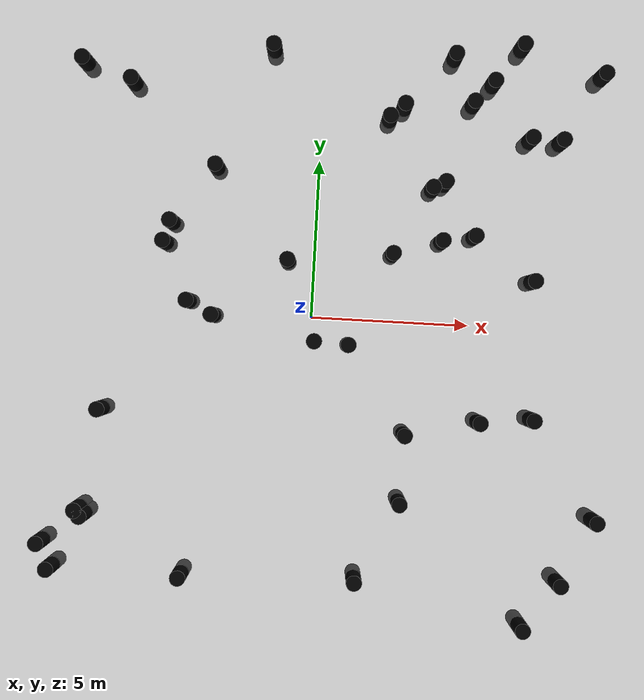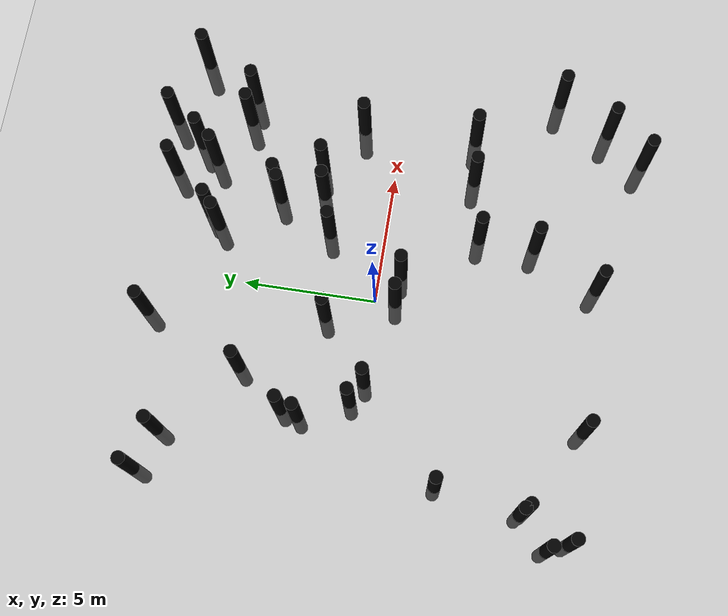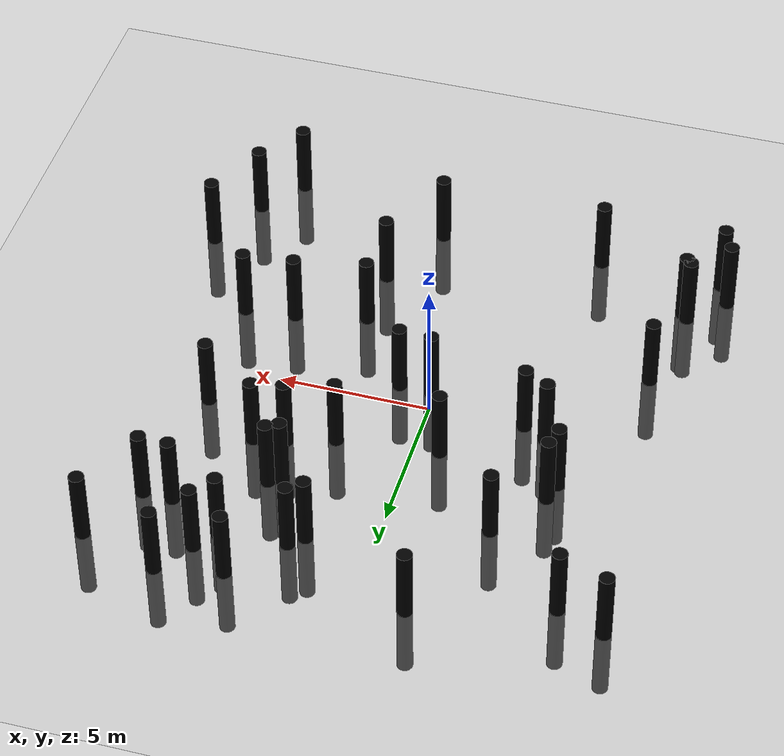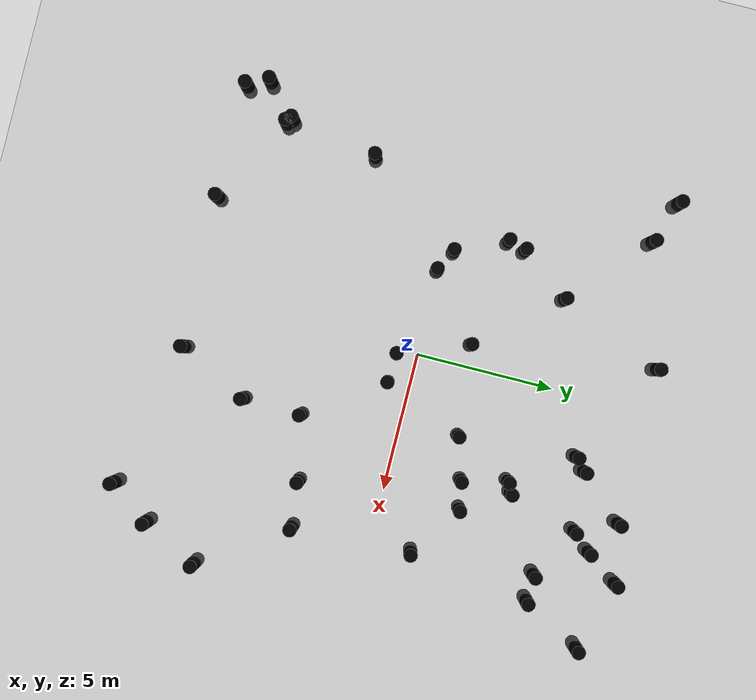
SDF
<?xml version="1.0"?>

<sdf version="1.6">
    <world name="world_medium_density">
        <physics name="4ms" type="ignored">
            <max_step_size>0.004</max_step_size>
            <real_time_factor>1.0</real_time_factor>
        </physics>
        <plugin
            filename="ignition-gazebo-physics-system"
            name="ignition::gazebo::systems::Physics">
        </plugin>
        <plugin
            filename="ignition-gazebo-scene-broadcaster-system"
            name="ignition::gazebo::systems::SceneBroadcaster">
        </plugin>
        <plugin
            filename="ignition-gazebo-user-commands-system"
            name="ignition::gazebo::systems::UserCommands">
        </plugin>
        <plugin
            filename="ignition-gazebo-sensors-system"
            name="ignition::gazebo::systems::Sensors">
            <render_engine>ogre2</render_engine>
        </plugin>

        <include>
            <uri>model://ground_plane</uri>
        </include>
        <include>
            <uri>model://pole</uri>
            <name>pole1</name>
            <pose>-0.84 1.77 0 0 0 0</pose>
        </include>
        <include>
            <uri>model://pole</uri>
            <name>pole2</name>
            <pose>0.13 -0.75 0 0 0 0</pose>
        </include>
        <include>
            <uri>model://pole</uri>
            <name>pole3</name>
            <pose>2.6 6.84 0 0 0 0</pose>
        </include>
        <include>
            <uri>model://pole</uri>
            <name>pole4</name>
            <pose>5.02 2.82 0 0 0 0</pose>
        </include>
        <include>
            <uri>model://pole</uri>
            <name>pole5</name>
            <pose>-4.77 2.16 0 0 0 0</pose>
        </include>
        <include>
            <uri>model://pole</uri>
            <name>pole6</name>
            <pose>2.47 2.14 0 0 0 0</pose>
        </include>
        <include>
            <uri>model://pole</uri>
            <name>pole7</name>
            <pose>6.64 5.99 0 0 0 0</pose>
        </include>
        <include>
            <uri>model://pole</uri>
            <name>pole8</name>
            <pose>6.95 1.5 0 0 0 0</pose>
        </include>
        <include>
            <uri>model://pole</uri>
            <name>pole9</name>
            <pose>-7.87 -8.33 0 0 0 0</pose>
        </include>
        <include>
            <uri>model://pole</uri>
            <name>pole10</name>
            <pose>-6.54 -3.24 0 0 0 0</pose>
        </include>
        <include>
            <uri>model://pole</uri>
            <name>pole11</name>
            <pose>1.21 -0.81 0 0 0 0</pose>
        </include>
        <include>
            <uri>model://pole</uri>
            <name>pole12</name>
            <pose>8.82 8.12 0 0 0 0</pose>
        </include>
        <include>
            <uri>model://pole</uri>
            <name>pole13</name>
            <pose>-3.94 0.33 0 0 0 0</pose>
        </include>
        <include>
            <uri>model://pole</uri>
            <name>pole14</name>
            <pose>7.14 -2.88 0 0 0 0</pose>
        </include>
        <include>
            <uri>model://pole</uri>
            <name>pole15</name>
            <pose>3.61 4.27 0 0 0 0</pose>
        </include>
        <include>
            <uri>model://pole</uri>
            <name>pole16</name>
            <pose>2.15 6.44 0 0 0 0</pose>
        </include>
        <include>
            <uri>model://pole</uri>
            <name>pole17</name>
            <pose>5.46 -3.05 0 0 0 0</pose>
        </include>
        <include>
            <uri>model://pole</uri>
            <name>pole18</name>
            <pose>4.11 8.49 0 0 0 0</pose>
        </include>
        <include>
            <uri>model://pole</uri>
            <name>pole19</name>
            <pose>-1.62 8.48 0 0 0 0</pose>
        </include>
        <include>
            <uri>model://pole</uri>
            <name>pole20</name>
            <pose>-3.25 4.63 0 0 0 0</pose>
        </include>
        <include>
            <uri>model://pole</uri>
            <name>pole21</name>
            <pose>7.13 -9.46 0 0 0 0</pose>
        </include>
        <include>
            <uri>model://pole</uri>
            <name>pole22</name>
            <pose>5.37 7.71 0 0 0 0</pose>
        </include>
        <include>
            <uri>model://pole</uri>
            <name>pole23</name>
            <pose>4.0 2.62 0 0 0 0</pose>
        </include>
        <include>
            <uri>model://pole</uri>
            <name>pole24</name>
            <pose>7.61 5.97 0 0 0 0</pose>
        </include>
        <include>
            <uri>model://pole</uri>
            <name>pole25</name>
            <pose>3.12 -3.56 0 0 0 0</pose>
        </include>
        <include>
            <uri>model://pole</uri>
            <name>pole26</name>
            <pose>3.07 -5.72 0 0 0 0</pose>
        </include>
        <include>
            <uri>model://pole</uri>
            <name>pole27</name>
            <pose>-7.58 7.75 0 0 0 0</pose>
        </include>
        <include>
            <uri>model://pole</uri>
            <name>pole28</name>
            <pose>9.27 -5.98 0 0 0 0</pose>
        </include>
        <include>
            <uri>model://pole</uri>
            <name>pole29</name>
            <pose>-8.22 -7.54 0 0 0 0</pose>
        </include>
        <include>
            <uri>model://pole</uri>
            <name>pole30</name>
            <pose>4.0 4.47 0 0 0 0</pose>
        </include>
        <include>
            <uri>model://pole</uri>
            <name>pole31</name>
            <pose>-3.74 -8.38 0 0 0 0</pose>
        </include>
        <include>
            <uri>model://pole</uri>
            <name>pole32</name>
            <pose>-7.09 -6.44 0 0 0 0</pose>
        </include>
        <include>
            <uri>model://pole</uri>
            <name>pole33</name>
            <pose>-6.02 7.19 0 0 0 0</pose>
        </include>
        <include>
            <uri>model://pole</uri>
            <name>pole34</name>
            <pose>1.78 -8.24 0 0 0 0</pose>
        </include>
        <include>
            <uri>model://pole</uri>
            <name>pole35</name>
            <pose>8.24 -8.0 0 0 0 0</pose>
        </include>
        <include>
            <uri>model://pole</uri>
            <name>pole36</name>
            <pose>-3.14 -0.08 0 0 0 0</pose>
        </include>
        <include>
            <uri>model://pole</uri>
            <name>pole37</name>
            <pose>-6.92 -6.62 0 0 0 0</pose>
        </include>
        <include>
            <uri>model://pole</uri>
            <name>pole38</name>
            <pose>-4.59 2.81 0 0 0 0</pose>
        </include>
        <include>
            <uri>model://pole</uri>
            <name>pole39</name>
            <pose>4.77 7.03 0 0 0 0</pose>
        </include>
        <include>
            <uri>model://pole</uri>
            <name>pole40</name>
            <pose>6.23 8.9 0 0 0 0</pose>
        </include>

    </world>
</sdf>

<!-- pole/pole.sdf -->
<sdf version="1.9">
    <model name="pole">
        <link name="pole_link">

            <visual name='visual'>
                <geometry>
                    <cylinder>
                        <radius>0.25</radius>
                        <length>5.0</length>
                    </cylinder>
                </geometry>
                <material>
                    <diffuse>0 0 0 1</diffuse>
                </material>
            </visual>

            <inertial>
                <mass>0.005</mass>
                <inertia>
                    <ixx>8.33e-06</ixx>
                    <ixy>0</ixy>
                    <ixz>0</ixz>
                    <iyy>8.33e-06</iyy>
                    <iyz>0</iyz>
                    <izz>8.33e-06</izz>
                </inertia>
            </inertial>

            <collision name="collision">
                <geometry>
                    <cylinder>
                        <radius>0.25</radius>
                        <length>5.0</length>
                    </cylinder>
                </geometry>
            </collision>
        </link>

    </model>
</sdf>
